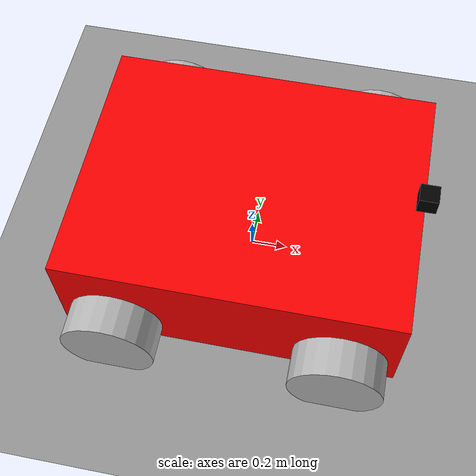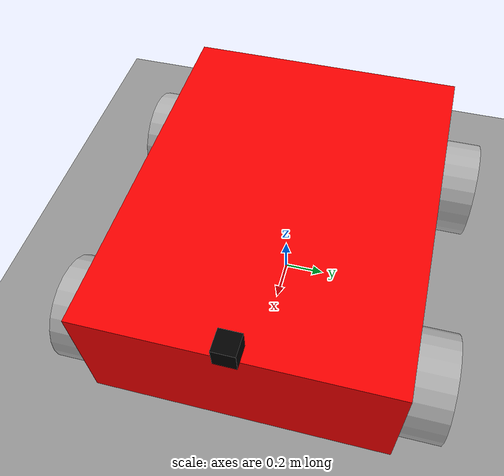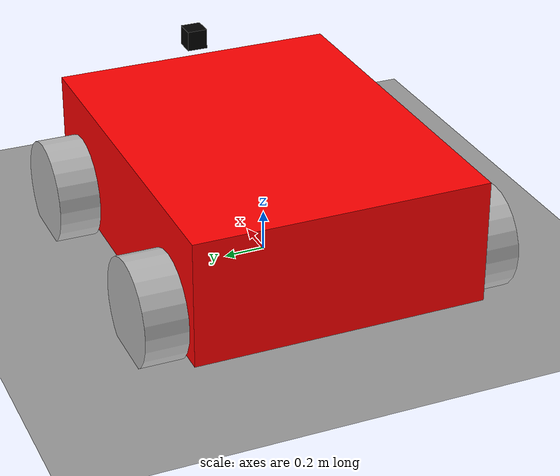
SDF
<?xml version="1.0" ?>
<sdf version="1.10">
  <world name="car_world">
  <plugin
      filename="gz-sim-physics-system"
      name="gz::sim::systems::Physics">
    </plugin>
    <plugin
      filename="gz-sim-user-commands-system"
      name="gz::sim::systems::UserCommands">
    </plugin>
    <plugin
      filename="gz-sim-scene-broadcaster-system"
      name="gz::sim::systems::SceneBroadcaster">
    </plugin>
    <plugin
      filename="gz-sim-sensors-system"
      name="gz::sim::systems::Sensors">
      <render_engine>ogre2</render_engine>
    </plugin>

    <scene>
      <ambient>0.7 0.7 0.7 1</ambient>
      <background>0.8 0.9 1.0 1</background>
      <shadows>true</shadows>
    </scene>

    <!-- Scene & Lighting -->
    <scene>
      <ambient>0.7 0.7 0.7 1</ambient>
      <background>0.8 0.9 1.0 1</background>
      <shadows>true</shadows>
    </scene>

    <light type="directional" name="sun">
      <pose>0 0 10 0 0 0</pose>
      <diffuse>1 1 1 1</diffuse>
      <direction>-0.5 0.1 -0.9</direction>
    </light>

    <!-- Ground -->
    <model name="ground_plane">
      <static>true</static>
      <link name="link">
        <collision name="collision">
          <geometry>
            <plane><normal>0 0 1</normal></plane>
          </geometry>
        </collision>
        <visual name="visual">
          <geometry>
            <plane>
              <normal>0 0 1</normal>
              <size>100 100</size>
            </plane>
          </geometry>
          <material>
            <ambient>0.6 0.6 0.6 1</ambient>
            <diffuse>0.6 0.6 0.6 1</diffuse>
          </material>
        </visual>
      </link>
    </model>

    <!-- TONK -->
    <model name="tonk" canonical_link="base">
      <!-- Spawn height so wheels touch ground -->
      <pose>0 0 0.35 0 0 0</pose>

      <!-- Diff Drive Plugin (front wheels only) -->
      <plugin filename="gz-sim-diff-drive-system"
              name="gz::sim::systems::DiffDrive">
        <left_joint>left_front_joint</left_joint>
        <right_joint>right_front_joint</right_joint>
        <wheel_separation>1.6</wheel_separation>
        <wheel_radius>0.25</wheel_radius>
        <topic>cmd_vel</topic>
      </plugin>

      <!-- Base Link -->
      <link name="base">
        <inertial>
          <mass>40</mass>
          <inertia><ixx>2</ixx><iyy>2</iyy><izz>2</izz></inertia>
        </inertial>
        <visual name="visual">
          <geometry><box><size>1.8 1.4 0.6</size></box></geometry>
          <material>
            <ambient>1 0 0 1</ambient>
            <diffuse>1 0 0 1</diffuse>
          </material>
        </visual>
        <collision name="collision">
          <geometry><box><size>1.8 1.4 0.6</size></box></geometry>
        </collision>
      </link>
      <!-- Pov camera -->
      <!-- link -->
      <link name="camera_link">
        <pose>0.9 0 0.4 0 0 0</pose> <inertial>
          <mass>0.1</mass>
          <inertia>
            <ixx>0.0001</ixx><iyy>0.0001</iyy><izz>0.0001</izz>
          </inertia>
        </inertial>
        <visual name="visual">
          <geometry><box><size>0.1 0.1 0.1</size></box></geometry>
          <material>
            <ambient>0 0 0 1</ambient>
            <diffuse>0 0 0 1</diffuse>
          </material>
        </visual>
        <!-- sensor -->
        <sensor name="camera" type="camera">
          <pose>0 0 0 0 0 0</pose>
          <always_on>1</always_on>
          <update_rate>30</update_rate>
          <visualize>true</visualize>
          <topic>camera/image_raw</topic>
          <camera>
            <horizontal_fov>1.05</horizontal_fov>
            <image>
              <width>640</width>
              <height>480</height>
            </image>
            <clip>
              <near>0.1</near>
              <far>100</far>
            </clip>
          </camera>
        </sensor>
      </link>
      <!-- joint -->
      <joint name="camera_joint" type="fixed">
        <parent>base</parent>
        <child>camera_link</child>
      </joint>

      <!-- Wheels -->
      <!-- Left Front -->
      <link name="left_front">
        <pose>0.6 0.8 -0.15 -1.57 0 0</pose>
        <inertial><mass>2</mass></inertial>
        <visual name="visual"><geometry><cylinder><radius>0.25</radius><length>0.2</length></cylinder></geometry></visual>
        <collision name="collision"><geometry><cylinder><radius>0.25</radius><length>0.2</length></cylinder></geometry></collision>
      </link>

      <!-- Right Front -->
      <link name="right_front">
        <pose>0.6 -0.8 -0.15 -1.57 0 0</pose>
        <inertial><mass>2</mass></inertial>
        <visual name="visual"><geometry><cylinder><radius>0.25</radius><length>0.2</length></cylinder></geometry></visual>
        <collision name="collision"><geometry><cylinder><radius>0.25</radius><length>0.2</length></cylinder></geometry></collision>
      </link>

      <!-- Left Rear -->
      <link name="left_rear">
        <pose>-0.6 0.8 -0.15 -1.57 0 0</pose>
        <inertial><mass>2</mass></inertial>
        <visual name="visual"><geometry><cylinder><radius>0.25</radius><length>0.2</length></cylinder></geometry></visual>
        <collision name="collision"><geometry><cylinder><radius>0.25</radius><length>0.2</length></cylinder></geometry></collision>
      </link>

      <!-- Right Rear -->
      <link name="right_rear">
        <pose>-0.6 -0.8 -0.15 -1.57 0 0</pose>
        <inertial><mass>2</mass></inertial>
        <visual name="visual"><geometry><cylinder><radius>0.25</radius><length>0.2</length></cylinder></geometry></visual>
        <collision name="collision"><geometry><cylinder><radius>0.25</radius><length>0.2</length></cylinder></geometry></collision>
      </link>

      <!-- Joints -->
      <joint name="left_front_joint" type="revolute">
        <parent>base</parent><child>left_front</child>
        <axis><xyz>0 0 -1</xyz></axis>
      </joint>
      <joint name="right_front_joint" type="revolute">
        <parent>base</parent><child>right_front</child>
        <axis><xyz>0 0 1</xyz></axis>
      </joint>
      <joint name="left_rear_joint" type="revolute">
        <parent>base</parent><child>left_rear</child>
        <axis><xyz>0 0 -1</xyz></axis>
      </joint>
      <joint name="right_rear_joint" type="revolute">
        <parent>base</parent><child>right_rear</child>
        <axis><xyz>0 0 1</xyz></axis>
      </joint>

    </model>
  </world>
</sdf>
